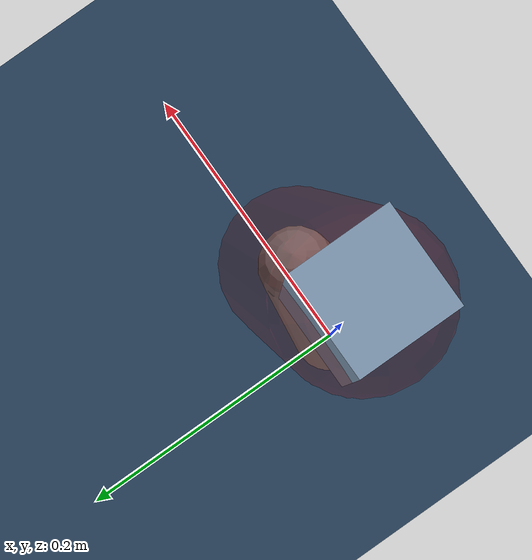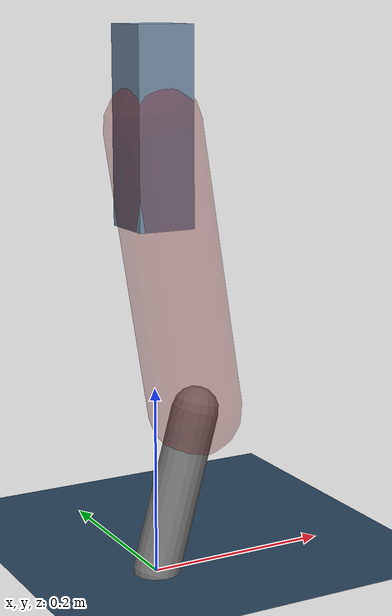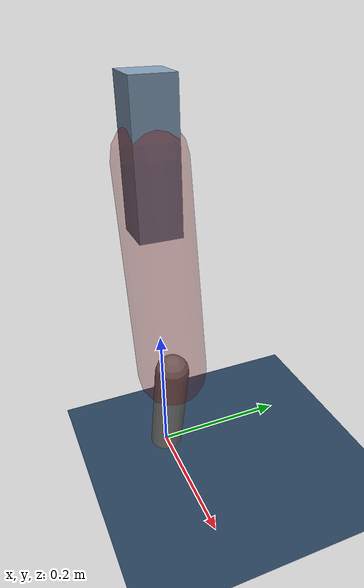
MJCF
<mujoco model="Hopper2D">
	<compiler inertiafromgeom="true" angle="radian" />
	<option timestep="0.001" integrator="implicit" cone="elliptic" solver="Newton" tolerance="1e-10" />

	<default>
		<geom contype="1" conaffinity="1" condim="3" friction="2 0.005 0.0001" solref="0.005 1" />
		<joint limited="true" damping="0.1" />
	</default>

	<asset>
		<texture name="skybox" type="skybox" builtin="gradient" rgb1=".4 .6 .8" rgb2="0 0 0" width="800" height="800" />
		<texture name="grid" type="2d" builtin="checker" rgb1=".1 .2 .3" rgb2=".2 .3 .4" width="300" height="300" mark="edge" markrgb=".2 .3 .4" />
		<material name="ground" texture="grid" texrepeat="1 1" texuniform="true" reflectance="0.1" />
		<material name="leg" rgba="0.5 0.6 0.7 1" />
	</asset>

	<worldbody>

		<geom name="floor" type="plane" size="5 5 0.25" material="ground" />

		<light directional="false" diffuse="0.8 0.8 0.8" specular="0.3 0.3 0.3" pos="0 0 2" dir="0 0 -1" />
		<light mode="targetbodycom" target="base" directional="false" diffuse="0.8 0.8 0.8" specular="0.3 0.3 0.3" pos="0 0 2" dir="0 0 -1" />

		<camera name="fixed" pos="0 -2 1" xyaxes="1 0 0 0 0 1" />
		<camera name="tracking" mode="trackcom" pos="0 -3 1" />

		<body name="root" pos="0 0 0.4685092293130602">
			<joint name="slide_x" type="slide" axis="1 0 0" range="-100 100" />
			<joint name="slide_z" type="slide" axis="0 0 1" range="0 10" />

			<body name="base" pos="0 0 0">
				<geom name="torso" type="box" size="0.03 0.03 0.1" mass="2.096" material="leg" />

				<body name="link1" pos="0 0 0" euler="0 1.4140544653753717 0">
					<joint type="hinge" axis="0 -1 0" pos="0 0 0" name="hinge1" limited="true" range="-3.14 3.14" stiffness="0" damping="0.1" />
					<geom name="thigh" type="capsule" fromto="0 0 0 0.30076687599811325 0 0" size="0.05" rgba="0.5 0 0 0.3" mass="0.9907705651949058" />

					<body name="link2" pos="0.30076687599811325 0 0" euler="0 0.4240604103536141 0">
						<joint type="hinge" axis="0 -1 0" pos="0 0 0" name="hinge2" limited="true" range="-3.14 3.14" stiffness="0" damping="0.1" />
						<geom name="shank" type="capsule" fromto="0 0 0 0.17774235331494698 0 0" size="0.025" mass="0.38196811798345226" />

					</body>
				</body>
			</body>
		</body>
	</worldbody>

	<actuator>
		<motor name="torque1" joint="hinge1" ctrlrange="-32.653334540259884 32.653334540259884" ctrllimited="true" gear="1" />
		<motor name="torque2" joint="hinge2" ctrlrange="-26.505637251157864 26.505637251157864" ctrllimited="true" gear="1" />
	</actuator>
</mujoco>
